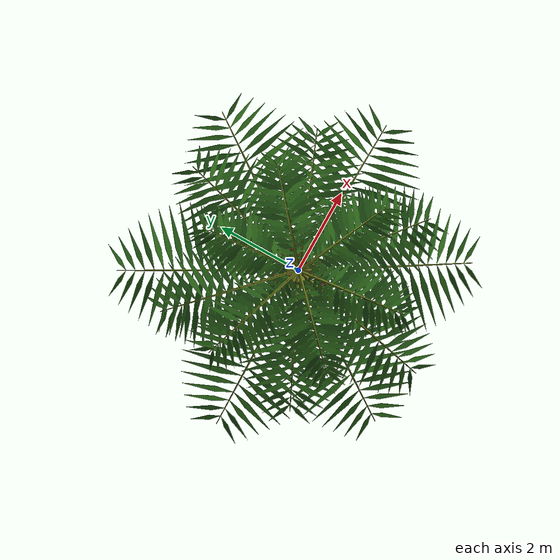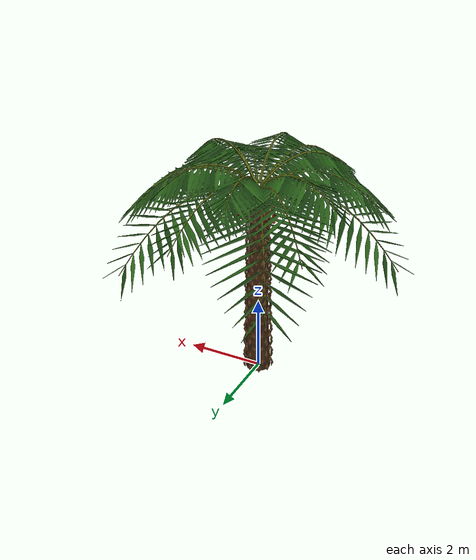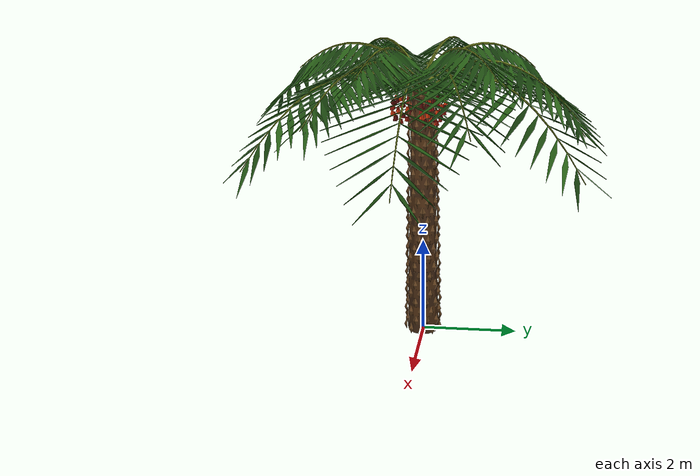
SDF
<?xml version='1.0' encoding='utf-8'?>
<sdf version="1.9">
  <model name="oil_palm">
    <static>true</static>
    <link name="surface">
      <visual name="visual">
        <geometry>
          <mesh>
            <uri>model://palm_farm/meshes/palm.dae</uri>
            <scale>1.0 1.0 1.0</scale>
          </mesh>
        </geometry>
        <cast_shadows>true</cast_shadows>
      </visual>
      <collision name="collision">
        <geometry>
          <mesh>
            <uri>model://palm_farm/meshes/palm.dae</uri>
            <scale>1.0 1.0 1.0</scale>
          </mesh>
        </geometry>
      </collision>
    </link>
  </model>
</sdf>
